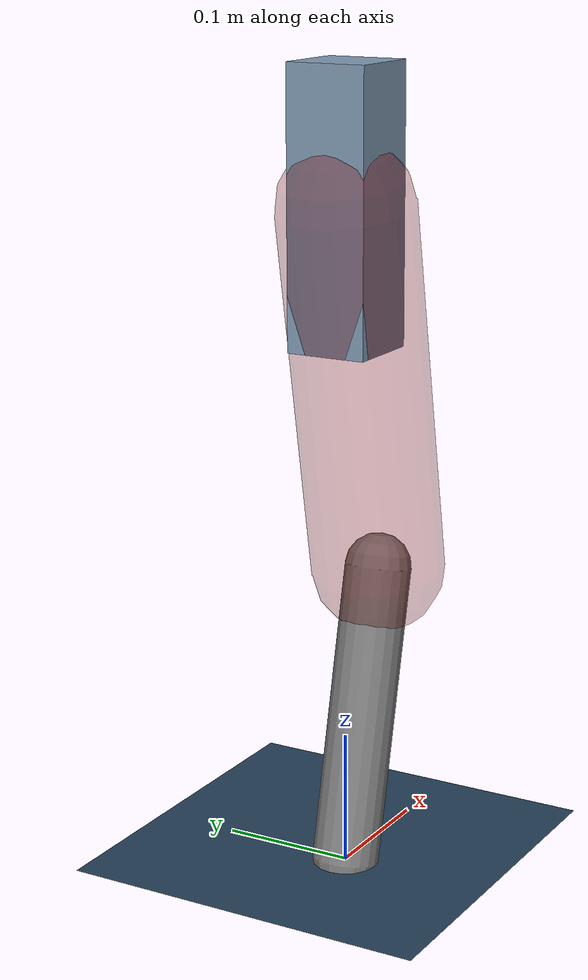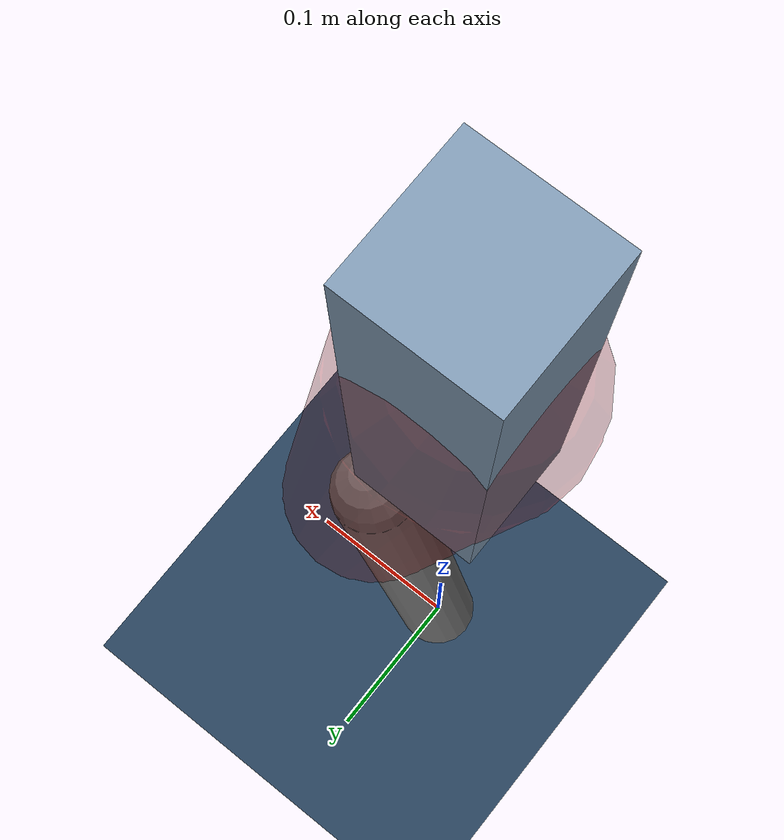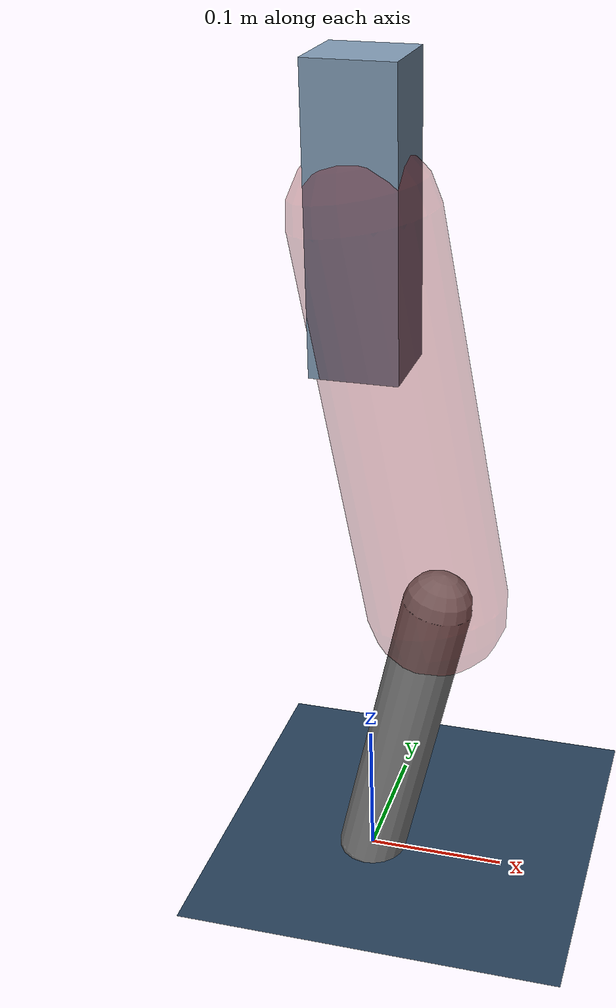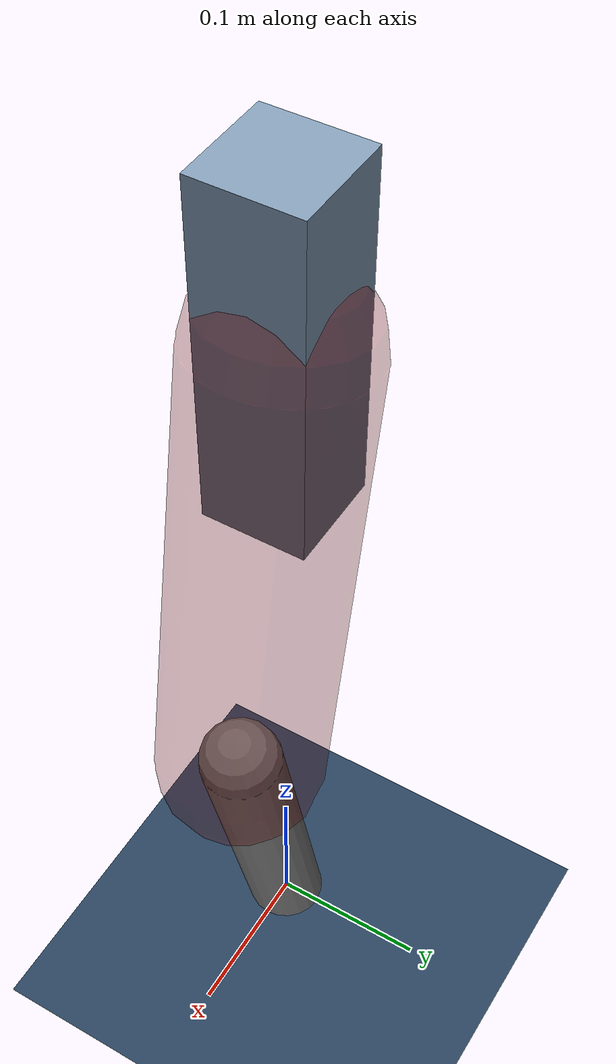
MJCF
<mujoco model="Hopper2D">
	<compiler inertiafromgeom="true" angle="radian" />
	<option timestep="0.001" integrator="implicit" cone="elliptic" solver="Newton" tolerance="1e-10" />

	<default>
		<geom contype="1" conaffinity="1" condim="3" friction="2 0.005 0.0001" solref="0.005 1" />
		<joint limited="true" damping="0.1" />
	</default>

	<asset>
		<texture name="skybox" type="skybox" builtin="gradient" rgb1=".4 .6 .8" rgb2="0 0 0" width="800" height="800" />
		<texture name="grid" type="2d" builtin="checker" rgb1=".1 .2 .3" rgb2=".2 .3 .4" width="300" height="300" mark="edge" markrgb=".2 .3 .4" />
		<material name="ground" texture="grid" texrepeat="1 1" texuniform="true" reflectance="0.1" />
		<material name="leg" rgba="0.5 0.6 0.7 1" />
	</asset>

	<worldbody>

		<geom name="floor" type="plane" size="5 5 0.25" material="ground" />

		<light directional="false" diffuse="0.8 0.8 0.8" specular="0.3 0.3 0.3" pos="0 0 2" dir="0 0 -1" />
		<light mode="targetbodycom" target="base" directional="false" diffuse="0.8 0.8 0.8" specular="0.3 0.3 0.3" pos="0 0 2" dir="0 0 -1" />

		<camera name="fixed" pos="0 -2 1" xyaxes="1 0 0 0 0 1" />
		<camera name="tracking" mode="trackcom" pos="0 -3 1" />

		<body name="root" pos="0 0 0.4917360533148498">
			<joint name="slide_x" type="slide" axis="1 0 0" range="-100 100" />
			<joint name="slide_z" type="slide" axis="0 0 1" range="0 10" />

			<body name="base" pos="0 0 0">
				<geom name="torso" type="box" size="0.03 0.03 0.1" mass="1.8279999999999998" material="leg" />

				<body name="link1" pos="0 0 0" euler="0 1.3916929806469243 0">
					<joint type="hinge" axis="0 -1 0" pos="0 0 0" name="hinge1" limited="true" range="-3.14 3.14" stiffness="0" damping="0.1" />
					<geom name="thigh" type="capsule" fromto="0 0 0 0.27803590256364596 0 0" size="0.05" rgba="0.5 0 0 0.3" mass="0.929896936921844" />

					<body name="link2" pos="0.27803590256364596 0 0" euler="0 0.4023721959915608 0">
						<joint type="hinge" axis="0 -1 0" pos="0 0 0" name="hinge2" limited="true" range="-3.14 3.14" stiffness="0" damping="0.1" />
						<geom name="shank" type="capsule" fromto="0 0 0 0.22370015075120386 0 0" size="0.025" mass="0.4207601206009631" />

					</body>
				</body>
			</body>
		</body>
	</worldbody>

	<actuator>
		<motor name="torque1" joint="hinge1" ctrlrange="-67.86708298618213 67.86708298618213" ctrllimited="true" gear="1" />
		<motor name="torque2" joint="hinge2" ctrlrange="-56.289921249962084 56.289921249962084" ctrllimited="true" gear="1" />
	</actuator>
</mujoco>
